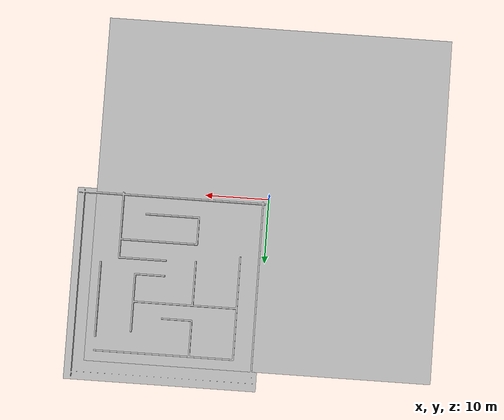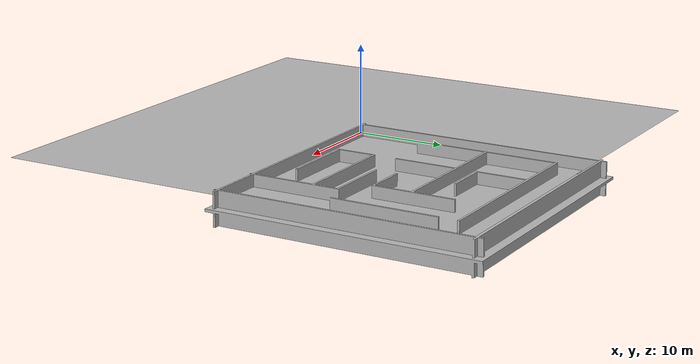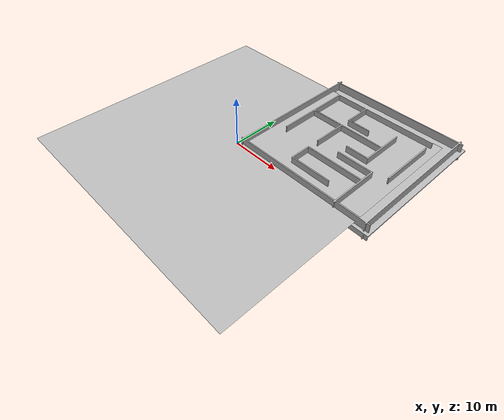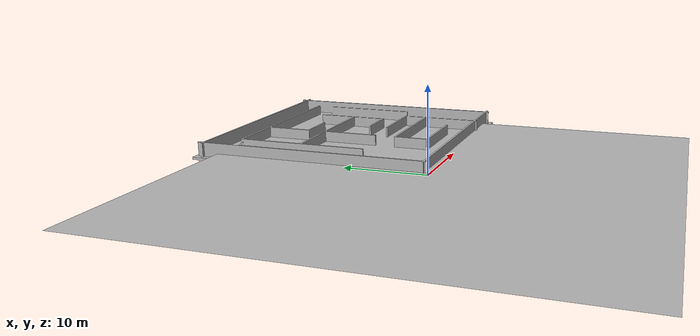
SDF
<?xml version="1.0" ?>
<sdf version="1.5">
  <world name="default">
    <physics name='default_physics' default='0' type='ode'>
      <max_step_size>0.001</max_step_size>
      <real_time_factor>1</real_time_factor>
      <real_time_update_rate>1000</real_time_update_rate>
    </physics>
    <scene>
      <shadows>false</shadows>
      <sky>
        <clouds>
          <speed>12</speed>
        </clouds>
      </sky>
    </scene>
     <light type="directional" name="sun">
      <cast_shadows>true</cast_shadows>
      <pose>250 250 600 0 0 0</pose>
      <diffuse>0.8 0.8 0.8 1</diffuse>
      <specular>0.2 0.2 0.2 1</specular>
      <attenuation>
        <range>1000</range>
        <constant>0.9</constant>
        <linear>0.01</linear>
        <quadratic>0.001</quadratic>
      </attenuation>
      <direction>0 0 -1</direction>
    </light>
    <model name="ground_plane">
      <static>true</static>
      <link name="link">
        <collision name="collision">
          <pose>0 0 0 0 0 0</pose>
          <geometry>
            <plane>
              <normal>0 0 1</normal>
              <size>250 250</size>
            </plane>
          </geometry>
          <surface>
            <friction>
              <ode>
                <mu>1</mu>
                <mu2>1</mu2>
              </ode>
            </friction>
          </surface>
        </collision>
        <visual name="grass">
          <pose>0 0 0 0 0 0</pose>
          <cast_shadows>false</cast_shadows>
          <geometry>
            <mesh>
              <uri>file://grass_plane/meshes/grass_plane.dae</uri>
            </mesh>
          </geometry>
        </visual>
      </link>
    </model>
    <include>
      <uri>model://maze</uri>
    </include>
  </world>
</sdf>

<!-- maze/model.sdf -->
<sdf version='1.6'>
  <model name='maze'>
      <link name='link_0'>
        <inertial>
          <mass>15</mass>
          <inertia>
            <ixx>1</ixx>
            <ixy>1</ixy>
            <ixz>1</ixz>
            <iyy>1</iyy>
            <iyz>1</iyz>
            <izz>1</izz>
          </inertia>
        </inertial>
        <self_collide>1</self_collide>
        <enable_wind>0</enable_wind>
        <kinematic>0</kinematic>
        <pose frame=''>0 0 0 0.785 0 0</pose>
        <visual name='visual'>
          <pose frame=''>0 0 0 0.785 0 0</pose>
          <geometry>
            <mesh>
              <uri>model://maze/meshes/labirinto.obj</uri>
              <scale>1 1 1</scale>
            </mesh>
          </geometry>
          <transparency>0</transparency>
          <cast_shadows>1</cast_shadows>
        </visual>
        <collision name='collision'>
          <laser_retro>0</laser_retro>
          <max_contacts>10</max_contacts>
          <pose frame=''>0 0 0 0.785 0 0</pose>
          <geometry>
            <mesh>
              <uri>model://maze/meshes/labirinto.obj</uri>
              <scale>1 1 1</scale>
            </mesh>
          </geometry>
          <surface>
            <friction>
              <ode>
                <mu>1</mu>
                <mu2>1</mu2>
                <fdir1>0 0 0</fdir1>
                <slip1>0</slip1>
                <slip2>0</slip2>
              </ode>
              <torsional>
                <coefficient>1</coefficient>
                <patch_radius>100</patch_radius>
                <surface_radius>100</surface_radius>
                <use_patch_radius>1</use_patch_radius>
                <ode>
                  <slip>0</slip>
                </ode>
              </torsional>
            </friction>
            <bounce>
              <restitution_coefficient>0</restitution_coefficient>
              <threshold>1e+06</threshold>
            </bounce>
            <contact>
              <collide_without_contact>0</collide_without_contact>
              <collide_without_contact_bitmask>1</collide_without_contact_bitmask>
              <collide_bitmask>1</collide_bitmask>
              <ode>
                <soft_cfm>0</soft_cfm>
                <soft_erp>0.2</soft_erp>
                <kp>1e+13</kp>
                <kd>1</kd>
                <max_vel>0.01</max_vel>
                <min_depth>0</min_depth>
              </ode>
              <bullet>
                <split_impulse>1</split_impulse>
                <split_impulse_penetration_threshold>-0.01</split_impulse_penetration_threshold>
                <soft_cfm>0</soft_cfm>
                <soft_erp>0.2</soft_erp>
                <kp>1e+13</kp>
                <kd>1</kd>
              </bullet>
            </contact>
          </surface>
        </collision>
      </link>
    <static>1</static>
  </model>
</sdf>
